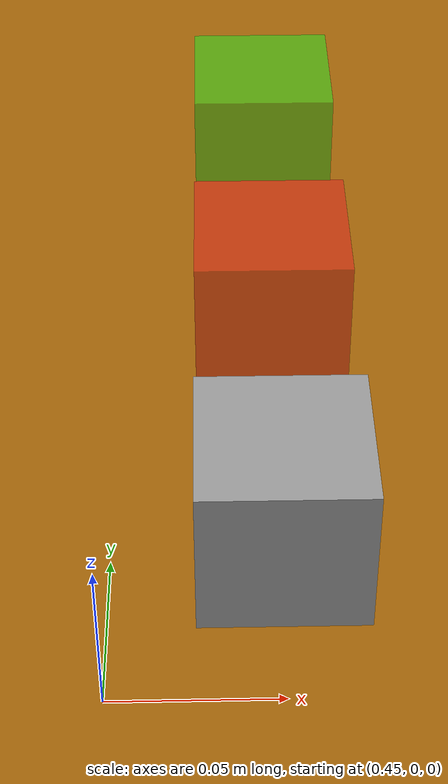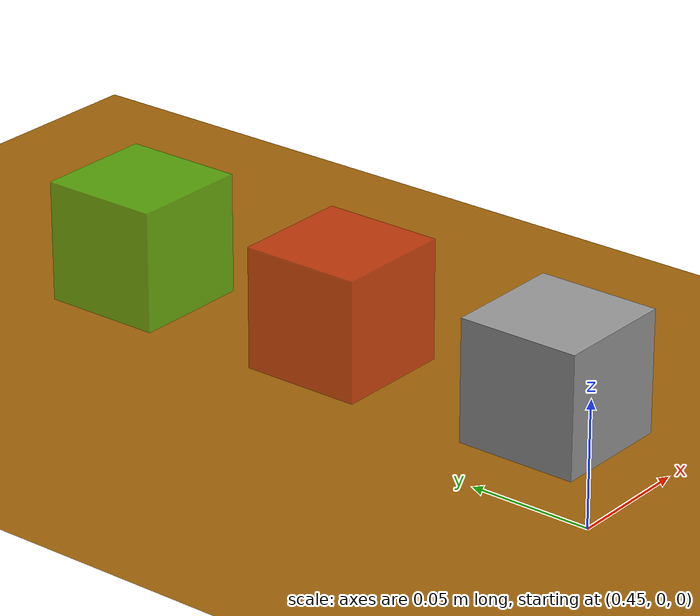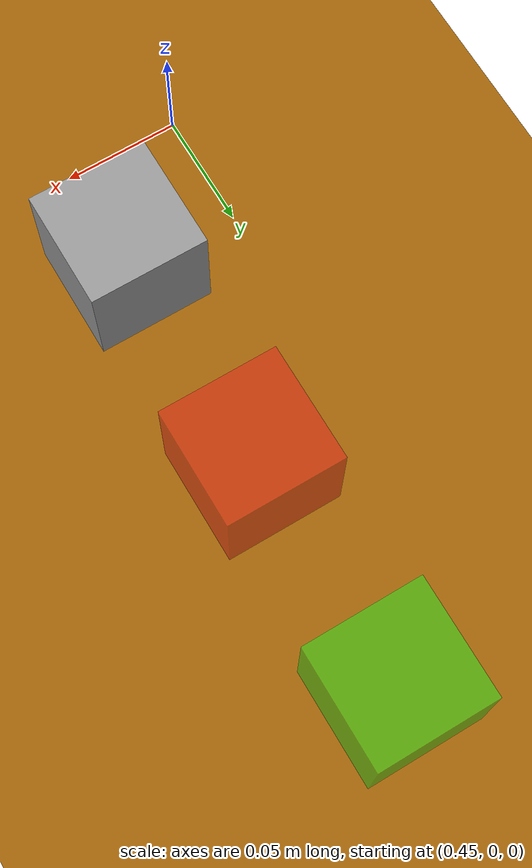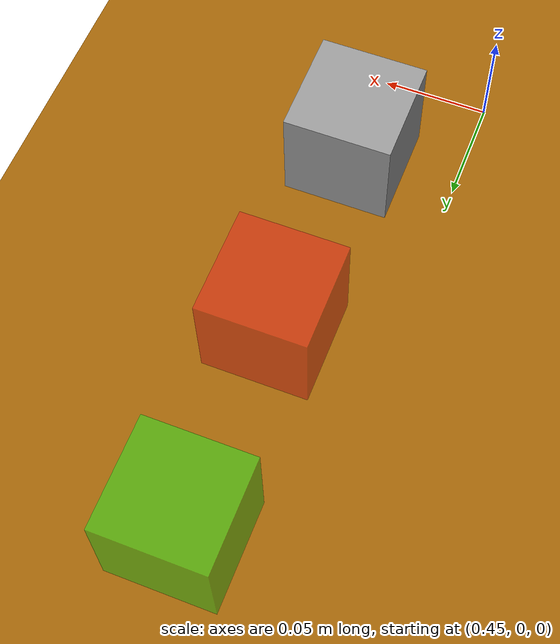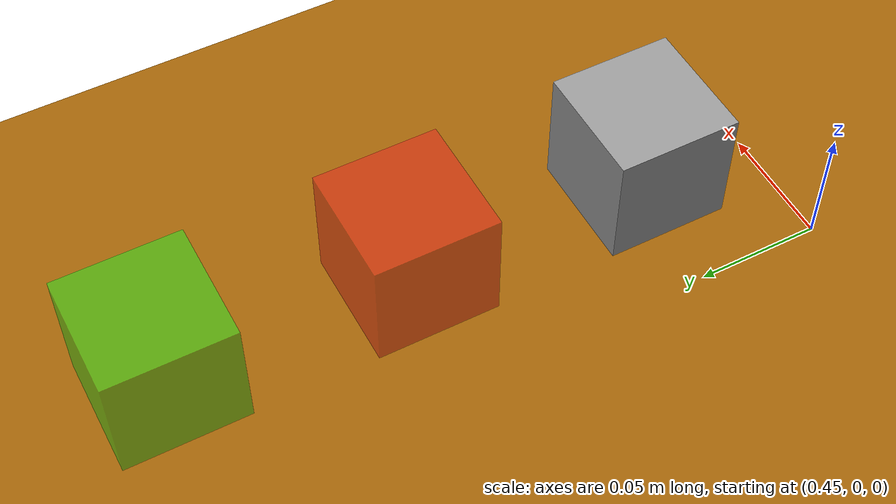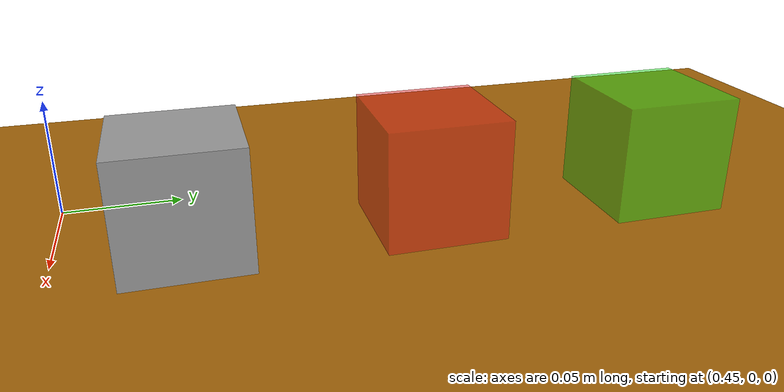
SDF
<?xml version="1.0"?>
<sdf version="1.9">
  <world name="gz_moveit2_manipulation_1">

    <!-- Physics -->
    <plugin filename="gz-sim-physics-system" name="gz::sim::systems::Physics">
      <engine>
        <filename>gz-physics-dartsim-plugin</filename>
      </engine>
      <dart>
        <collision_detector>bullet</collision_detector>
      </dart>
    </plugin>
    <physics name="physics_config" type="dart">
      <max_step_size>0.002</max_step_size>
      <real_time_factor>100.0</real_time_factor>
    </physics>

    <!-- Scene -->
    <plugin filename="gz-sim-scene-broadcaster-system" name="gz::sim::systems::SceneBroadcaster">
    </plugin>
    <scene>
      <ambient>0.8 0.8 0.8</ambient>
      <grid>false</grid>
    </scene>

    <!-- User Commands (transform control) -->
    <plugin filename="gz-sim-user-commands-system" name="gz::sim::systems::UserCommands">
    </plugin>

    <!-- Illumination -->
    <light type="directional" name="sun">
      <cast_shadows>true</cast_shadows>
      <pose>0 0 10 0 0 0</pose>
      <diffuse>0.8 0.8 0.8 1</diffuse>
      <specular>0.2 0.2 0.2 1</specular>
      <attenuation>
        <range>1000</range>
        <constant>0.9</constant>
        <linear>0.01</linear>
        <quadratic>0.001</quadratic>
      </attenuation>
      <direction>-0.3 0.3 -0.9</direction>
    </light>

    <!-- Models -->
    <!-- Ground -->
    <model name="ground_plane">
      <pose>0.5 0 0 0 0 0</pose>
      <static>true</static>
      <link name="ground_plane_link">
        <collision name="ground_plane_collision">
          <pose>0 0 -0.05 0 0 0</pose>
          <geometry>
            <box>
              <size>5 2 0.1</size>
            </box>
          </geometry>
        </collision>
        <visual name="ground_plane_visual">
          <geometry>
            <plane>
              <normal>0 0 1</normal>
              <size>5 2</size>
            </plane>
          </geometry>
          <material>
            <diffuse>0.631 0.388 0.031 1</diffuse>
            <specular>0.8 0.8 0.8 1</specular>
          </material>
        </visual>
      </link>
    </model>
    <model name="underground_plane">
      <pose>0.5 0 -10.0 0 0 0</pose>
      <static>true</static>
      <link name="underground_plane_link">
        <collision name="underground_plane_collision">
          <geometry>
            <plane>
              <normal>0 0 1</normal>
            </plane>
          </geometry>
        </collision>
      </link>
    </model>

    <!-- Object to interact -->
    <model name="interaction_cube">
      <pose>0.5 0.05 0.025 -3.14 0.0 0.0</pose>
      <link name="interaction_cube_link">
        <inertial>
          <inertia>
            <ixx>0.00025</ixx>
            <ixy>0.0</ixy>
            <ixz>0.0</ixz>
            <iyy>0.00025</iyy>
            <iyz>0.0</iyz>
            <izz>0.00025</izz>
          </inertia>
          <mass>0.6</mass>
        </inertial>
        <collision name="interaction_cube_collision">
          <geometry>
            <box>
              <size>0.05 0.05 0.05</size>
            </box>
          </geometry>
          <surface>
            <friction>
              <ode>
                <mu>2.0</mu>
                <mu2>2.0</mu2>
              </ode>
            </friction>
          </surface>
        </collision>
        <visual name="interaction_cube_visual">
          <geometry>
            <box>
              <size>0.05 0.05 0.05</size>
            </box>
          </geometry>
          <material>
            <diffuse>0.6 0.6 0.6 1</diffuse>
            <specular>0.7 0.4 0.4 1</specular>
          </material>
        </visual>
      </link>

            <!-- Pose publisher plugin, used to determine the target pose to reach -->
      <plugin filename="gz-sim-pose-publisher-system" name="gz::sim::systems::PosePublisher">
        <publish_nested_model_pose>true</publish_nested_model_pose>
        <publish_link_pose>false</publish_link_pose>
        <publish_collision_pose>false</publish_collision_pose>
        <publish_visual_pose>false</publish_visual_pose>
      </plugin>

    </model>

    <!-- Object to interact_visual_start -->
    <model name="visual_cube_start">
      <pose>0.5 0.15 0.025 -3.14 0.0 0.0</pose>
      <static>true</static>
      <link name="interaction_cube_start_link">
        <visual name="interaction_cube_visual_start">
          <geometry>
            <box>
              <size>0.05 0.05 0.05</size>
            </box>
          </geometry>
          <material>
            <diffuse>0.92 0.1 0.1 0.5</diffuse>
            <specular>0.7 0.4 0.4 0.5</specular>
          </material>
        </visual>
      </link>
    </model>

    <!-- Object to interact_visual_goal -->
    <model name="visual_cube_goal">
      <pose>0.5 0.25 0.025 -3.14 0.0 0.0</pose>
      <static>true</static>
      <link name="interaction_cube_goal_link">
        <visual name="interaction_cube_visual_goal">
          <geometry>
            <box>
              <size>0.05 0.05 0.05</size>
            </box>
          </geometry>
          <material>
            <diffuse>0.1 0.92 0.1 0.5</diffuse>
            <specular>0.4 0.7 0.4 0.5</specular>
          </material>
        </visual>
      </link>
    </model>

  </world>
</sdf>
